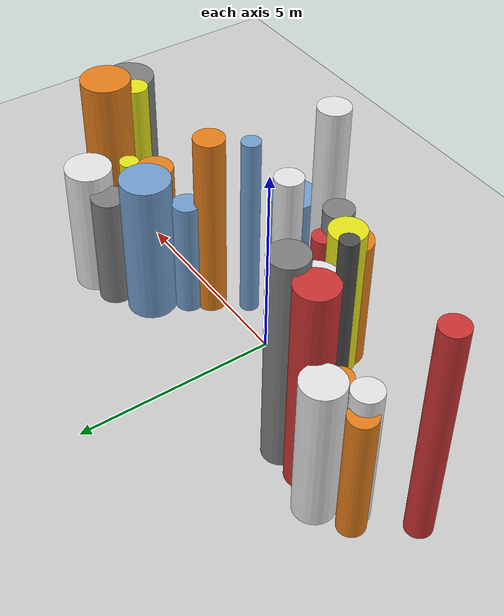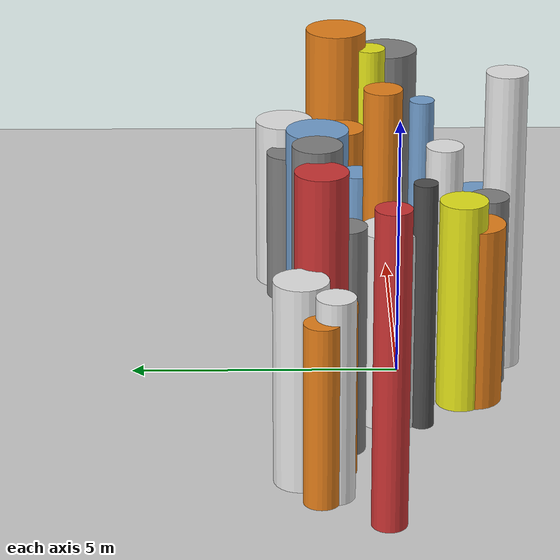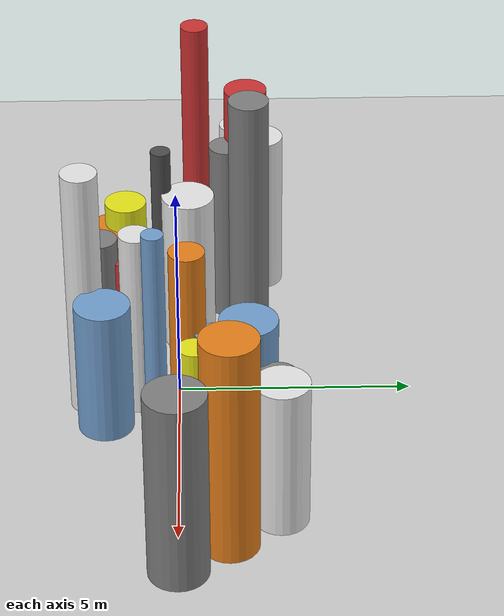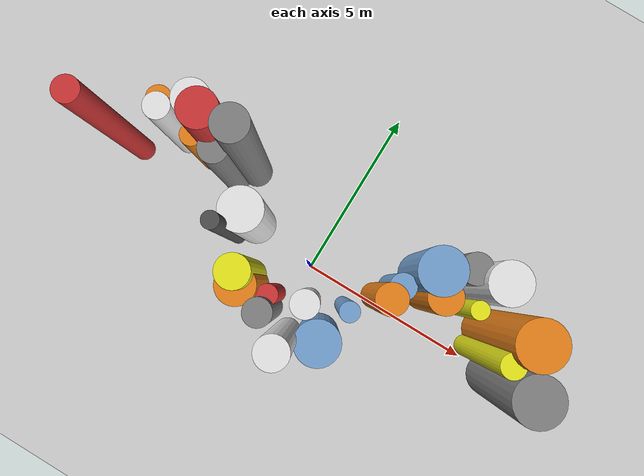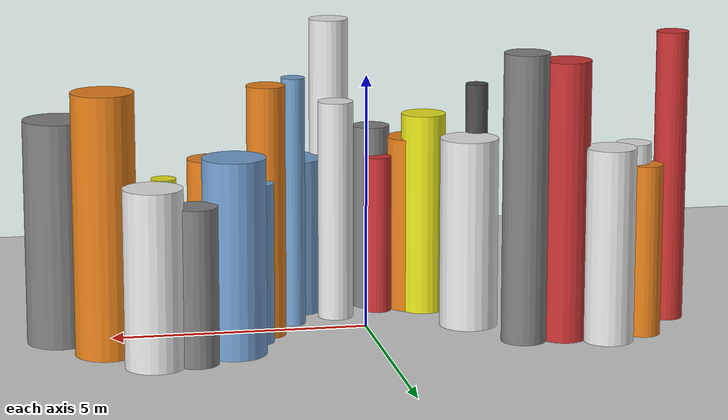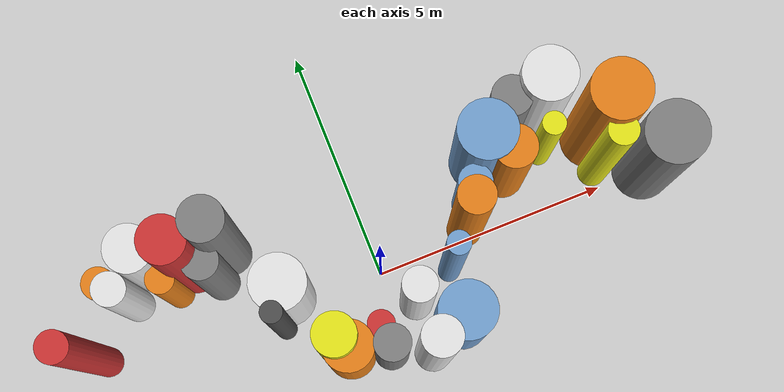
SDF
<?xml version='1.0'?>
<sdf version='1.6'>
  <world name='routeA_rl_v1__dense_recovery__rl_train__s_turn_multi_obstacle__000089'>
    <!-- Sun light -->
    <light name='sun' type='directional'>
      <cast_shadows>1</cast_shadows>
      <pose>0 0 10 0 0 0</pose>
      <diffuse>0.8 0.8 0.8 1</diffuse>
      <specular>0.2 0.2 0.2 1</specular>
      <attenuation>
        <range>1000</range>
        <constant>0.9</constant>
        <linear>0.01</linear>
        <quadratic>0.001</quadratic>
      </attenuation>
      <direction>-0.5 0.1 -0.9</direction>
    </light>

    <!-- Ground plane -->
    <model name='ground_plane'>
      <static>1</static>
      <link name='link'>
        <collision name='collision'>
          <geometry>
            <plane>
              <normal>0 0 1</normal>
              <size>100 100</size>
            </plane>
          </geometry>
          <surface>
            <contact>
              <collide_bitmask>65535</collide_bitmask>
              <ode/>
            </contact>
            <friction>
              <ode>
                <mu>100</mu>
                <mu2>50</mu2>
              </ode>
              <torsional><ode/></torsional>
            </friction>
            <bounce/>
          </surface>
          <max_contacts>10</max_contacts>
        </collision>
        <visual name='visual'>
          <cast_shadows>0</cast_shadows>
          <geometry>
            <plane>
              <normal>0 0 1</normal>
              <size>100 100</size>
            </plane>
          </geometry>
          <material>
            <script>
              <uri>file://media/materials/scripts/gazebo.material</uri>
              <n>Gazebo/Grey</n>
            </script>
          </material>
        </visual>
      </link>
    </model>

    <!-- Environment -->
    <magnetic_field>6e-06 2.3e-05 -4.2e-05</magnetic_field>
    <atmosphere type='adiabatic'/>
    <physics name='default_physics' default='0' type='ode'>
      <gravity>0 0 -9.8</gravity>
      <max_step_size>0.004</max_step_size>
      <real_time_factor>1</real_time_factor>
      <real_time_update_rate>250</real_time_update_rate>
    </physics>
    <scene>
      <ambient>0.4 0.4 0.4 1</ambient>
      <background>0.7 0.7 0.7 1</background>
      <shadows>1</shadows>
    </scene>
    <wind/>
    <spherical_coordinates>
      <surface_model>EARTH_WGS84</surface_model>
      <latitude_deg>0</latitude_deg>
      <longitude_deg>0</longitude_deg>
      <elevation>0</elevation>
      <heading_deg>0</heading_deg>
    </spherical_coordinates>

    <!-- ============ OBSTACLES (28) ============ -->
    <model name='s_turn_obs_0'>
      <static>1</static>
      <link name='link'>
        <visual name='visual'>
          <geometry>
            <cylinder>
              <radius>0.3120</radius>
              <length>5.7475</length>
            </cylinder>
          </geometry>
          <material>
            <script>
              <n>Gazebo/Red</n>
              <uri>file://media/materials/scripts/gazebo.material</uri>
            </script>
            <ambient>0.8 0.2 0.2 1</ambient>
          </material>
        </visual>
        <collision name='collision'>
          <geometry>
            <cylinder>
              <radius>0.3120</radius>
              <length>5.7475</length>
            </cylinder>
          </geometry>
          <max_contacts>10</max_contacts>
          <surface>
            <contact><ode/></contact>
            <bounce/>
            <friction>
              <ode><mu>1</mu><mu2>1</mu2></ode>
              <torsional><ode/></torsional>
            </friction>
          </surface>
        </collision>
      </link>
      <pose>-6.0000 0.3912 2.8738 0 0 0.0000</pose>
    </model>

    <model name='s_turn_obs_1'>
      <static>1</static>
      <link name='link'>
        <visual name='visual'>
          <geometry>
            <cylinder>
              <radius>0.3246</radius>
              <length>3.3684</length>
            </cylinder>
          </geometry>
          <material>
            <script>
              <n>Gazebo/Orange</n>
              <uri>file://media/materials/scripts/gazebo.material</uri>
            </script>
            <ambient>0.9 0.5 0.1 1</ambient>
          </material>
        </visual>
        <collision name='collision'>
          <geometry>
            <cylinder>
              <radius>0.3246</radius>
              <length>3.3684</length>
            </cylinder>
          </geometry>
          <max_contacts>10</max_contacts>
          <surface>
            <contact><ode/></contact>
            <bounce/>
            <friction>
              <ode><mu>1</mu><mu2>1</mu2></ode>
              <torsional><ode/></torsional>
            </friction>
          </surface>
        </collision>
      </link>
      <pose>-5.2000 1.5144 1.6842 0 0 0.0000</pose>
    </model>

    <model name='s_turn_obs_2'>
      <static>1</static>
      <link name='link'>
        <visual name='visual'>
          <geometry>
            <cylinder>
              <radius>0.4864</radius>
              <length>3.7974</length>
            </cylinder>
          </geometry>
          <material>
            <script>
              <n>Gazebo/White</n>
              <uri>file://media/materials/scripts/gazebo.material</uri>
            </script>
            <ambient>0.9 0.9 0.9 1</ambient>
          </material>
        </visual>
        <collision name='collision'>
          <geometry>
            <cylinder>
              <radius>0.4864</radius>
              <length>3.7974</length>
            </cylinder>
          </geometry>
          <max_contacts>10</max_contacts>
          <surface>
            <contact><ode/></contact>
            <bounce/>
            <friction>
              <ode><mu>1</mu><mu2>1</mu2></ode>
              <torsional><ode/></torsional>
            </friction>
          </surface>
        </collision>
      </link>
      <pose>-4.4000 1.8617 1.8987 0 0 0.0000</pose>
    </model>

    <model name='s_turn_obs_3'>
      <static>1</static>
      <link name='link'>
        <visual name='visual'>
          <geometry>
            <cylinder>
              <radius>0.4671</radius>
              <length>5.4459</length>
            </cylinder>
          </geometry>
          <material>
            <script>
              <n>Gazebo/Red</n>
              <uri>file://media/materials/scripts/gazebo.material</uri>
            </script>
            <ambient>0.8 0.2 0.2 1</ambient>
          </material>
        </visual>
        <collision name='collision'>
          <geometry>
            <cylinder>
              <radius>0.4671</radius>
              <length>5.4459</length>
            </cylinder>
          </geometry>
          <max_contacts>10</max_contacts>
          <surface>
            <contact><ode/></contact>
            <bounce/>
            <friction>
              <ode><mu>1</mu><mu2>1</mu2></ode>
              <torsional><ode/></torsional>
            </friction>
          </surface>
        </collision>
      </link>
      <pose>-3.6000 1.5038 2.7230 0 0 0.0000</pose>
    </model>

    <model name='s_turn_obs_4'>
      <static>1</static>
      <link name='link'>
        <visual name='visual'>
          <geometry>
            <cylinder>
              <radius>0.4406</radius>
              <length>5.6235</length>
            </cylinder>
          </geometry>
          <material>
            <script>
              <n>Gazebo/Grey</n>
              <uri>file://media/materials/scripts/gazebo.material</uri>
            </script>
            <ambient>0.5 0.5 0.5 1</ambient>
          </material>
        </visual>
        <collision name='collision'>
          <geometry>
            <cylinder>
              <radius>0.4406</radius>
              <length>5.6235</length>
            </cylinder>
          </geometry>
          <max_contacts>10</max_contacts>
          <surface>
            <contact><ode/></contact>
            <bounce/>
            <friction>
              <ode><mu>1</mu><mu2>1</mu2></ode>
              <torsional><ode/></torsional>
            </friction>
          </surface>
        </collision>
      </link>
      <pose>-2.8000 1.5631 2.8117 0 0 0.0000</pose>
    </model>

    <model name='s_turn_obs_5'>
      <static>1</static>
      <link name='link'>
        <visual name='visual'>
          <geometry>
            <cylinder>
              <radius>0.5702</radius>
              <length>3.7425</length>
            </cylinder>
          </geometry>
          <material>
            <script>
              <n>Gazebo/White</n>
              <uri>file://media/materials/scripts/gazebo.material</uri>
            </script>
            <ambient>0.9 0.9 0.9 1</ambient>
          </material>
        </visual>
        <collision name='collision'>
          <geometry>
            <cylinder>
              <radius>0.5702</radius>
              <length>3.7425</length>
            </cylinder>
          </geometry>
          <max_contacts>10</max_contacts>
          <surface>
            <contact><ode/></contact>
            <bounce/>
            <friction>
              <ode><mu>1</mu><mu2>1</mu2></ode>
              <torsional><ode/></torsional>
            </friction>
          </surface>
        </collision>
      </link>
      <pose>-2.0000 0.2274 1.8713 0 0 0.0000</pose>
    </model>

    <model name='s_turn_obs_6'>
      <static>1</static>
      <link name='link'>
        <visual name='visual'>
          <geometry>
            <cylinder>
              <radius>0.5160</radius>
              <length>3.4892</length>
            </cylinder>
          </geometry>
          <material>
            <script>
              <n>Gazebo/Orange</n>
              <uri>file://media/materials/scripts/gazebo.material</uri>
            </script>
            <ambient>0.9 0.5 0.1 1</ambient>
          </material>
        </visual>
        <collision name='collision'>
          <geometry>
            <cylinder>
              <radius>0.5160</radius>
              <length>3.4892</length>
            </cylinder>
          </geometry>
          <max_contacts>10</max_contacts>
          <surface>
            <contact><ode/></contact>
            <bounce/>
            <friction>
              <ode><mu>1</mu><mu2>1</mu2></ode>
              <torsional><ode/></torsional>
            </friction>
          </surface>
        </collision>
      </link>
      <pose>-1.2000 -1.3614 1.7446 0 0 0.0000</pose>
    </model>

    <model name='s_turn_obs_7'>
      <static>1</static>
      <link name='link'>
        <visual name='visual'>
          <geometry>
            <cylinder>
              <radius>0.3693</radius>
              <length>3.6897</length>
            </cylinder>
          </geometry>
          <material>
            <script>
              <n>Gazebo/Grey</n>
              <uri>file://media/materials/scripts/gazebo.material</uri>
            </script>
            <ambient>0.5 0.5 0.5 1</ambient>
          </material>
        </visual>
        <collision name='collision'>
          <geometry>
            <cylinder>
              <radius>0.3693</radius>
              <length>3.6897</length>
            </cylinder>
          </geometry>
          <max_contacts>10</max_contacts>
          <surface>
            <contact><ode/></contact>
            <bounce/>
            <friction>
              <ode><mu>1</mu><mu2>1</mu2></ode>
              <torsional><ode/></torsional>
            </friction>
          </surface>
        </collision>
      </link>
      <pose>-0.4000 -1.6260 1.8449 0 0 0.0000</pose>
    </model>

    <model name='s_turn_obs_8'>
      <static>1</static>
      <link name='link'>
        <visual name='visual'>
          <geometry>
            <cylinder>
              <radius>0.3877</radius>
              <length>5.8100</length>
            </cylinder>
          </geometry>
          <material>
            <script>
              <n>Gazebo/White</n>
              <uri>file://media/materials/scripts/gazebo.material</uri>
            </script>
            <ambient>0.9 0.9 0.9 1</ambient>
          </material>
        </visual>
        <collision name='collision'>
          <geometry>
            <cylinder>
              <radius>0.3877</radius>
              <length>5.8100</length>
            </cylinder>
          </geometry>
          <max_contacts>10</max_contacts>
          <surface>
            <contact><ode/></contact>
            <bounce/>
            <friction>
              <ode><mu>1</mu><mu2>1</mu2></ode>
              <torsional><ode/></torsional>
            </friction>
          </surface>
        </collision>
      </link>
      <pose>0.4000 -1.9582 2.9050 0 0 0.0000</pose>
    </model>

    <model name='s_turn_obs_9'>
      <static>1</static>
      <link name='link'>
        <visual name='visual'>
          <geometry>
            <cylinder>
              <radius>0.5975</radius>
              <length>3.1055</length>
            </cylinder>
          </geometry>
          <material>
            <script>
              <n>Gazebo/Blue</n>
              <uri>file://media/materials/scripts/gazebo.material</uri>
            </script>
            <ambient>0.447 0.624 0.812 1</ambient>
          </material>
        </visual>
        <collision name='collision'>
          <geometry>
            <cylinder>
              <radius>0.5975</radius>
              <length>3.1055</length>
            </cylinder>
          </geometry>
          <max_contacts>10</max_contacts>
          <surface>
            <contact><ode/></contact>
            <bounce/>
            <friction>
              <ode><mu>1</mu><mu2>1</mu2></ode>
              <torsional><ode/></torsional>
            </friction>
          </surface>
        </collision>
      </link>
      <pose>1.2000 -1.5562 1.5528 0 0 0.0000</pose>
    </model>

    <model name='s_turn_obs_10'>
      <static>1</static>
      <link name='link'>
        <visual name='visual'>
          <geometry>
            <cylinder>
              <radius>0.3742</radius>
              <length>4.9165</length>
            </cylinder>
          </geometry>
          <material>
            <script>
              <n>Gazebo/Orange</n>
              <uri>file://media/materials/scripts/gazebo.material</uri>
            </script>
            <ambient>0.9 0.5 0.1 1</ambient>
          </material>
        </visual>
        <collision name='collision'>
          <geometry>
            <cylinder>
              <radius>0.3742</radius>
              <length>4.9165</length>
            </cylinder>
          </geometry>
          <max_contacts>10</max_contacts>
          <surface>
            <contact><ode/></contact>
            <bounce/>
            <friction>
              <ode><mu>1</mu><mu2>1</mu2></ode>
              <torsional><ode/></torsional>
            </friction>
          </surface>
        </collision>
      </link>
      <pose>2.0000 0.2300 2.4583 0 0 0.0000</pose>
    </model>

    <model name='s_turn_obs_11'>
      <static>1</static>
      <link name='link'>
        <visual name='visual'>
          <geometry>
            <cylinder>
              <radius>0.6097</radius>
              <length>3.7971</length>
            </cylinder>
          </geometry>
          <material>
            <script>
              <n>Gazebo/Blue</n>
              <uri>file://media/materials/scripts/gazebo.material</uri>
            </script>
            <ambient>0.447 0.624 0.812 1</ambient>
          </material>
        </visual>
        <collision name='collision'>
          <geometry>
            <cylinder>
              <radius>0.6097</radius>
              <length>3.7971</length>
            </cylinder>
          </geometry>
          <max_contacts>10</max_contacts>
          <surface>
            <contact><ode/></contact>
            <bounce/>
            <friction>
              <ode><mu>1</mu><mu2>1</mu2></ode>
              <torsional><ode/></torsional>
            </friction>
          </surface>
        </collision>
      </link>
      <pose>2.8000 1.4596 1.8986 0 0 0.0000</pose>
    </model>

    <model name='s_turn_obs_12'>
      <static>1</static>
      <link name='link'>
        <visual name='visual'>
          <geometry>
            <cylinder>
              <radius>0.4198</radius>
              <length>3.0225</length>
            </cylinder>
          </geometry>
          <material>
            <script>
              <n>Gazebo/Grey</n>
              <uri>file://media/materials/scripts/gazebo.material</uri>
            </script>
            <ambient>0.5 0.5 0.5 1</ambient>
          </material>
        </visual>
        <collision name='collision'>
          <geometry>
            <cylinder>
              <radius>0.4198</radius>
              <length>3.0225</length>
            </cylinder>
          </geometry>
          <max_contacts>10</max_contacts>
          <surface>
            <contact><ode/></contact>
            <bounce/>
            <friction>
              <ode><mu>1</mu><mu2>1</mu2></ode>
              <torsional><ode/></torsional>
            </friction>
          </surface>
        </collision>
      </link>
      <pose>3.6000 2.0284 1.5113 0 0 0.0000</pose>
    </model>

    <model name='s_turn_obs_13'>
      <static>1</static>
      <link name='link'>
        <visual name='visual'>
          <geometry>
            <cylinder>
              <radius>0.5702</radius>
              <length>3.4128</length>
            </cylinder>
          </geometry>
          <material>
            <script>
              <n>Gazebo/White</n>
              <uri>file://media/materials/scripts/gazebo.material</uri>
            </script>
            <ambient>0.9 0.9 0.9 1</ambient>
          </material>
        </visual>
        <collision name='collision'>
          <geometry>
            <cylinder>
              <radius>0.5702</radius>
              <length>3.4128</length>
            </cylinder>
          </geometry>
          <max_contacts>10</max_contacts>
          <surface>
            <contact><ode/></contact>
            <bounce/>
            <friction>
              <ode><mu>1</mu><mu2>1</mu2></ode>
              <torsional><ode/></torsional>
            </friction>
          </surface>
        </collision>
      </link>
      <pose>4.4000 2.0947 1.7064 0 0 0.0000</pose>
    </model>

    <model name='s_turn_obs_14'>
      <static>1</static>
      <link name='link'>
        <visual name='visual'>
          <geometry>
            <cylinder>
              <radius>0.6011</radius>
              <length>5.0470</length>
            </cylinder>
          </geometry>
          <material>
            <script>
              <n>Gazebo/Orange</n>
              <uri>file://media/materials/scripts/gazebo.material</uri>
            </script>
            <ambient>0.9 0.5 0.1 1</ambient>
          </material>
        </visual>
        <collision name='collision'>
          <geometry>
            <cylinder>
              <radius>0.6011</radius>
              <length>5.0470</length>
            </cylinder>
          </geometry>
          <max_contacts>10</max_contacts>
          <surface>
            <contact><ode/></contact>
            <bounce/>
            <friction>
              <ode><mu>1</mu><mu2>1</mu2></ode>
              <torsional><ode/></torsional>
            </friction>
          </surface>
        </collision>
      </link>
      <pose>5.2000 1.0500 2.5235 0 0 0.0000</pose>
    </model>

    <model name='s_turn_obs_15'>
      <static>1</static>
      <link name='link'>
        <visual name='visual'>
          <geometry>
            <cylinder>
              <radius>0.6305</radius>
              <length>4.3555</length>
            </cylinder>
          </geometry>
          <material>
            <script>
              <n>Gazebo/Grey</n>
              <uri>file://media/materials/scripts/gazebo.material</uri>
            </script>
            <ambient>0.5 0.5 0.5 1</ambient>
          </material>
        </visual>
        <collision name='collision'>
          <geometry>
            <cylinder>
              <radius>0.6305</radius>
              <length>4.3555</length>
            </cylinder>
          </geometry>
          <max_contacts>10</max_contacts>
          <surface>
            <contact><ode/></contact>
            <bounce/>
            <friction>
              <ode><mu>1</mu><mu2>1</mu2></ode>
              <torsional><ode/></torsional>
            </friction>
          </surface>
        </collision>
      </link>
      <pose>6.0000 0.0130 2.1778 0 0 0.0000</pose>
    </model>

    <model name='s_turn_obs2_0'>
      <static>1</static>
      <link name='link'>
        <visual name='visual'>
          <geometry>
            <cylinder>
              <radius>0.3441</radius>
              <length>3.7511</length>
            </cylinder>
          </geometry>
          <material>
            <script>
              <n>Gazebo/White</n>
              <uri>file://media/materials/scripts/gazebo.material</uri>
            </script>
            <ambient>0.9 0.9 0.9 1</ambient>
          </material>
        </visual>
        <collision name='collision'>
          <geometry>
            <cylinder>
              <radius>0.3441</radius>
              <length>3.7511</length>
            </cylinder>
          </geometry>
          <max_contacts>10</max_contacts>
          <surface>
            <contact><ode/></contact>
            <bounce/>
            <friction>
              <ode><mu>1</mu><mu2>1</mu2></ode>
              <torsional><ode/></torsional>
            </friction>
          </surface>
        </collision>
      </link>
      <pose>-5.0000 1.2801 1.8756 0 0 0.0000</pose>
    </model>

    <model name='s_turn_obs2_1'>
      <static>1</static>
      <link name='link'>
        <visual name='visual'>
          <geometry>
            <cylinder>
              <radius>0.2915</radius>
              <length>3.2278</length>
            </cylinder>
          </geometry>
          <material>
            <script>
              <n>Gazebo/Orange</n>
              <uri>file://media/materials/scripts/gazebo.material</uri>
            </script>
            <ambient>0.9 0.5 0.1 1</ambient>
          </material>
        </visual>
        <collision name='collision'>
          <geometry>
            <cylinder>
              <radius>0.2915</radius>
              <length>3.2278</length>
            </cylinder>
          </geometry>
          <max_contacts>10</max_contacts>
          <surface>
            <contact><ode/></contact>
            <bounce/>
            <friction>
              <ode><mu>1</mu><mu2>1</mu2></ode>
              <torsional><ode/></torsional>
            </friction>
          </surface>
        </collision>
      </link>
      <pose>-4.0909 1.1718 1.6139 0 0 0.0000</pose>
    </model>

    <model name='s_turn_obs2_2'>
      <static>1</static>
      <link name='link'>
        <visual name='visual'>
          <geometry>
            <cylinder>
              <radius>0.3698</radius>
              <length>4.2742</length>
            </cylinder>
          </geometry>
          <material>
            <script>
              <n>Gazebo/Grey</n>
              <uri>file://media/materials/scripts/gazebo.material</uri>
            </script>
            <ambient>0.5 0.5 0.5 1</ambient>
          </material>
        </visual>
        <collision name='collision'>
          <geometry>
            <cylinder>
              <radius>0.3698</radius>
              <length>4.2742</length>
            </cylinder>
          </geometry>
          <max_contacts>10</max_contacts>
          <surface>
            <contact><ode/></contact>
            <bounce/>
            <friction>
              <ode><mu>1</mu><mu2>1</mu2></ode>
              <torsional><ode/></torsional>
            </friction>
          </surface>
        </collision>
      </link>
      <pose>-3.1818 1.0680 2.1371 0 0 0.0000</pose>
    </model>

    <model name='s_turn_obs2_3'>
      <static>1</static>
      <link name='link'>
        <visual name='visual'>
          <geometry>
            <cylinder>
              <radius>0.2176</radius>
              <length>4.6997</length>
            </cylinder>
          </geometry>
          <material>
            <script>
              <n>Gazebo/DarkGrey</n>
              <uri>file://media/materials/scripts/gazebo.material</uri>
            </script>
            <ambient>0.3 0.3 0.3 1</ambient>
          </material>
        </visual>
        <collision name='collision'>
          <geometry>
            <cylinder>
              <radius>0.2176</radius>
              <length>4.6997</length>
            </cylinder>
          </geometry>
          <max_contacts>10</max_contacts>
          <surface>
            <contact><ode/></contact>
            <bounce/>
            <friction>
              <ode><mu>1</mu><mu2>1</mu2></ode>
              <torsional><ode/></torsional>
            </friction>
          </surface>
        </collision>
      </link>
      <pose>-2.2727 -0.3506 2.3498 0 0 0.0000</pose>
    </model>

    <model name='s_turn_obs2_4'>
      <static>1</static>
      <link name='link'>
        <visual name='visual'>
          <geometry>
            <cylinder>
              <radius>0.4409</radius>
              <length>3.9990</length>
            </cylinder>
          </geometry>
          <material>
            <script>
              <n>Gazebo/Yellow</n>
              <uri>file://media/materials/scripts/gazebo.material</uri>
            </script>
            <ambient>0.9 0.9 0.1 1</ambient>
          </material>
        </visual>
        <collision name='collision'>
          <geometry>
            <cylinder>
              <radius>0.4409</radius>
              <length>3.9990</length>
            </cylinder>
          </geometry>
          <max_contacts>10</max_contacts>
          <surface>
            <contact><ode/></contact>
            <bounce/>
            <friction>
              <ode><mu>1</mu><mu2>1</mu2></ode>
              <torsional><ode/></torsional>
            </friction>
          </surface>
        </collision>
      </link>
      <pose>-1.3636 -1.0971 1.9995 0 0 0.0000</pose>
    </model>

    <model name='s_turn_obs2_5'>
      <static>1</static>
      <link name='link'>
        <visual name='visual'>
          <geometry>
            <cylinder>
              <radius>0.2763</radius>
              <length>3.1431</length>
            </cylinder>
          </geometry>
          <material>
            <script>
              <n>Gazebo/Red</n>
              <uri>file://media/materials/scripts/gazebo.material</uri>
            </script>
            <ambient>0.8 0.2 0.2 1</ambient>
          </material>
        </visual>
        <collision name='collision'>
          <geometry>
            <cylinder>
              <radius>0.2763</radius>
              <length>3.1431</length>
            </cylinder>
          </geometry>
          <max_contacts>10</max_contacts>
          <surface>
            <contact><ode/></contact>
            <bounce/>
            <friction>
              <ode><mu>1</mu><mu2>1</mu2></ode>
              <torsional><ode/></torsional>
            </friction>
          </surface>
        </collision>
      </link>
      <pose>-0.4545 -1.1874 1.5716 0 0 0.0000</pose>
    </model>

    <model name='s_turn_obs2_6'>
      <static>1</static>
      <link name='link'>
        <visual name='visual'>
          <geometry>
            <cylinder>
              <radius>0.3487</radius>
              <length>4.3509</length>
            </cylinder>
          </geometry>
          <material>
            <script>
              <n>Gazebo/White</n>
              <uri>file://media/materials/scripts/gazebo.material</uri>
            </script>
            <ambient>0.9 0.9 0.9 1</ambient>
          </material>
        </visual>
        <collision name='collision'>
          <geometry>
            <cylinder>
              <radius>0.3487</radius>
              <length>4.3509</length>
            </cylinder>
          </geometry>
          <max_contacts>10</max_contacts>
          <surface>
            <contact><ode/></contact>
            <bounce/>
            <friction>
              <ode><mu>1</mu><mu2>1</mu2></ode>
              <torsional><ode/></torsional>
            </friction>
          </surface>
        </collision>
      </link>
      <pose>0.4545 -0.8551 2.1754 0 0 0.0000</pose>
    </model>

    <model name='s_turn_obs2_7'>
      <static>1</static>
      <link name='link'>
        <visual name='visual'>
          <geometry>
            <cylinder>
              <radius>0.2336</radius>
              <length>4.9225</length>
            </cylinder>
          </geometry>
          <material>
            <script>
              <n>Gazebo/Blue</n>
              <uri>file://media/materials/scripts/gazebo.material</uri>
            </script>
            <ambient>0.447 0.624 0.812 1</ambient>
          </material>
        </visual>
        <collision name='collision'>
          <geometry>
            <cylinder>
              <radius>0.2336</radius>
              <length>4.9225</length>
            </cylinder>
          </geometry>
          <max_contacts>10</max_contacts>
          <surface>
            <contact><ode/></contact>
            <bounce/>
            <friction>
              <ode><mu>1</mu><mu2>1</mu2></ode>
              <torsional><ode/></torsional>
            </friction>
          </surface>
        </collision>
      </link>
      <pose>1.3636 -0.4663 2.4613 0 0 0.0000</pose>
    </model>

    <model name='s_turn_obs2_8'>
      <static>1</static>
      <link name='link'>
        <visual name='visual'>
          <geometry>
            <cylinder>
              <radius>0.3458</radius>
              <length>3.1223</length>
            </cylinder>
          </geometry>
          <material>
            <script>
              <n>Gazebo/Blue</n>
              <uri>file://media/materials/scripts/gazebo.material</uri>
            </script>
            <ambient>0.447 0.624 0.812 1</ambient>
          </material>
        </visual>
        <collision name='collision'>
          <geometry>
            <cylinder>
              <radius>0.3458</radius>
              <length>3.1223</length>
            </cylinder>
          </geometry>
          <max_contacts>10</max_contacts>
          <surface>
            <contact><ode/></contact>
            <bounce/>
            <friction>
              <ode><mu>1</mu><mu2>1</mu2></ode>
              <torsional><ode/></torsional>
            </friction>
          </surface>
        </collision>
      </link>
      <pose>2.2727 0.7044 1.5611 0 0 0.0000</pose>
    </model>

    <model name='s_turn_obs2_9'>
      <static>1</static>
      <link name='link'>
        <visual name='visual'>
          <geometry>
            <cylinder>
              <radius>0.4416</radius>
              <length>3.6928</length>
            </cylinder>
          </geometry>
          <material>
            <script>
              <n>Gazebo/Orange</n>
              <uri>file://media/materials/scripts/gazebo.material</uri>
            </script>
            <ambient>0.9 0.5 0.1 1</ambient>
          </material>
        </visual>
        <collision name='collision'>
          <geometry>
            <cylinder>
              <radius>0.4416</radius>
              <length>3.6928</length>
            </cylinder>
          </geometry>
          <max_contacts>10</max_contacts>
          <surface>
            <contact><ode/></contact>
            <bounce/>
            <friction>
              <ode><mu>1</mu><mu2>1</mu2></ode>
              <torsional><ode/></torsional>
            </friction>
          </surface>
        </collision>
      </link>
      <pose>3.1818 0.9741 1.8464 0 0 0.0000</pose>
    </model>

    <model name='s_turn_obs2_10'>
      <static>1</static>
      <link name='link'>
        <visual name='visual'>
          <geometry>
            <cylinder>
              <radius>0.2409</radius>
              <length>3.3824</length>
            </cylinder>
          </geometry>
          <material>
            <script>
              <n>Gazebo/Yellow</n>
              <uri>file://media/materials/scripts/gazebo.material</uri>
            </script>
            <ambient>0.9 0.9 0.1 1</ambient>
          </material>
        </visual>
        <collision name='collision'>
          <geometry>
            <cylinder>
              <radius>0.2409</radius>
              <length>3.3824</length>
            </cylinder>
          </geometry>
          <max_contacts>10</max_contacts>
          <surface>
            <contact><ode/></contact>
            <bounce/>
            <friction>
              <ode><mu>1</mu><mu2>1</mu2></ode>
              <torsional><ode/></torsional>
            </friction>
          </surface>
        </collision>
      </link>
      <pose>4.0909 1.1582 1.6912 0 0 0.0000</pose>
    </model>

    <model name='s_turn_obs2_11'>
      <static>1</static>
      <link name='link'>
        <visual name='visual'>
          <geometry>
            <cylinder>
              <radius>0.3033</radius>
              <length>4.7095</length>
            </cylinder>
          </geometry>
          <material>
            <script>
              <n>Gazebo/Yellow</n>
              <uri>file://media/materials/scripts/gazebo.material</uri>
            </script>
            <ambient>0.9 0.9 0.1 1</ambient>
          </material>
        </visual>
        <collision name='collision'>
          <geometry>
            <cylinder>
              <radius>0.3033</radius>
              <length>4.7095</length>
            </cylinder>
          </geometry>
          <max_contacts>10</max_contacts>
          <surface>
            <contact><ode/></contact>
            <bounce/>
            <friction>
              <ode><mu>1</mu><mu2>1</mu2></ode>
              <torsional><ode/></torsional>
            </friction>
          </surface>
        </collision>
      </link>
      <pose>5.0000 0.3724 2.3547 0 0 0.0000</pose>
    </model>

    <!-- GUI camera -->
    <gui fullscreen='0'>
      <camera name='user_camera'>
        <pose>-15 0 18 0 0.85 0.15</pose>
        <view_controller>orbit</view_controller>
        <projection_type>perspective</projection_type>
      </camera>
    </gui>
  </world>
</sdf>
